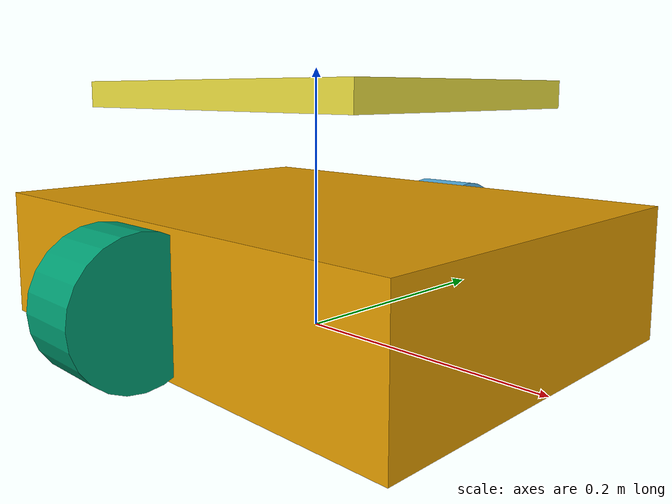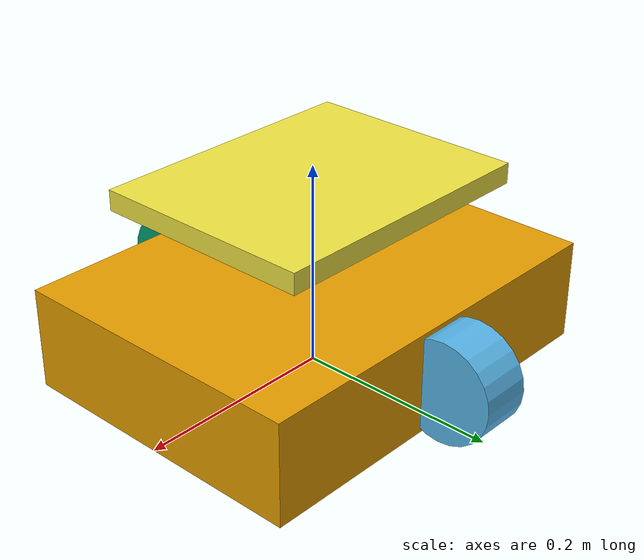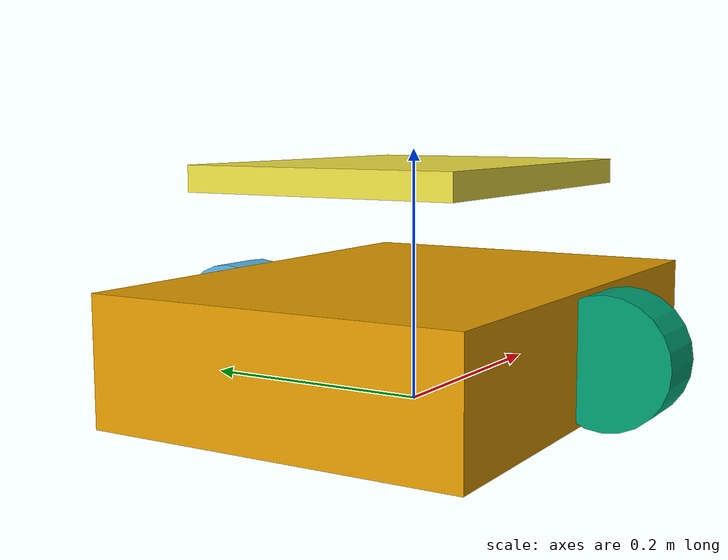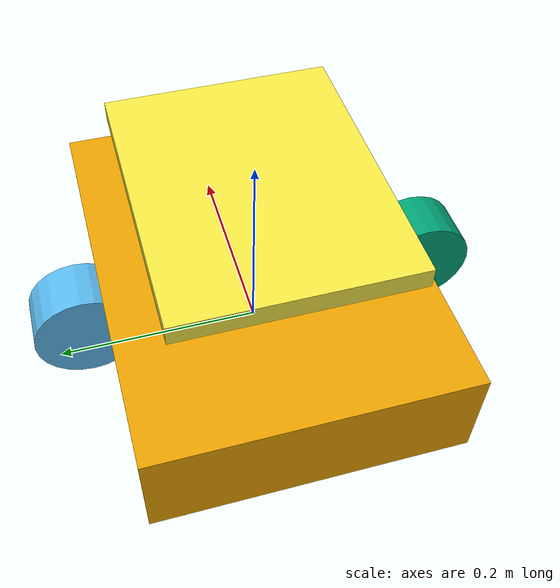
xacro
<?xml version="1.0"?>
<robot name="mm_base" xmlns:xacro="http://www.ros.org/wiki/xacro">

  <xacro:property name="wheel_radius" value="0.05"/>
  <xacro:property name="wheel_separation" value="0.34"/>

  <!-- Base -->
  <link name="base_link">
    <inertial>
      <mass value="8.0"/>
      <origin xyz="0 0 0.05"/>
      <inertia ixx="0.2" iyy="0.2" izz="0.2" ixy="0" ixz="0" iyz="0"/>
    </inertial>
    <visual><origin xyz="0 0 0.05"/><geometry><box size="0.4 0.3 0.1"/></geometry></visual>
    <collision><origin xyz="0 0 0.05"/><geometry><box size="0.4 0.3 0.1"/></geometry></collision>
  </link>

  <!-- Left wheel -->
  <link name="left_wheel">
    <inertial>
      <mass value="0.3"/>
      <origin xyz="0 0 0"/>
      <inertia ixx="0.0006" iyy="0.0006" izz="0.0012" ixy="0" ixz="0" iyz="0"/>
    </inertial>
    <visual><geometry><cylinder radius="${wheel_radius}" length="0.05"/></geometry></visual>
    <collision><geometry><cylinder radius="${wheel_radius}" length="0.05"/></geometry></collision>
  </link>
  <joint name="left_wheel_joint" type="continuous">
    <parent link="base_link"/>
    <child link="left_wheel"/>
    <origin xyz="0 ${wheel_separation/2} 0.05" rpy="0 1.57079632679 0"/>
    <axis xyz="0 1 0"/>
  </joint>

  <!-- Right wheel -->
  <link name="right_wheel">
    <inertial>
      <mass value="0.3"/>
      <origin xyz="0 0 0"/>
      <inertia ixx="0.0006" iyy="0.0006" izz="0.0012" ixy="0" ixz="0" iyz="0"/>
    </inertial>
    <visual><geometry><cylinder radius="${wheel_radius}" length="0.05"/></geometry></visual>
    <collision><geometry><cylinder radius="${wheel_radius}" length="0.05"/></geometry></collision>
  </link>
  <joint name="right_wheel_joint" type="continuous">
    <parent link="base_link"/>
    <child link="right_wheel"/>
    <origin xyz="0 -${wheel_separation/2} 0.05" rpy="0 1.57079632679 0"/>
    <axis xyz="0 1 0"/>
  </joint>

  <!-- Top plate -->
  <link name="top_plate">
    <inertial>
      <mass value="1.0"/>
      <origin xyz="0 0 0"/>
      <inertia ixx="0.002" iyy="0.002" izz="0.002" ixy="0" ixz="0" iyz="0"/>
    </inertial>
    <visual><origin xyz="0 0 0.18"/><geometry><box size="0.28 0.22 0.02"/></geometry></visual>
    <collision><origin xyz="0 0 0.18"/><geometry><box size="0.28 0.22 0.02"/></geometry></collision>
  </link>
  <joint name="top_plate_joint" type="fixed">
    <parent link="base_link"/>
    <child link="top_plate"/>
  </joint>
</robot>
